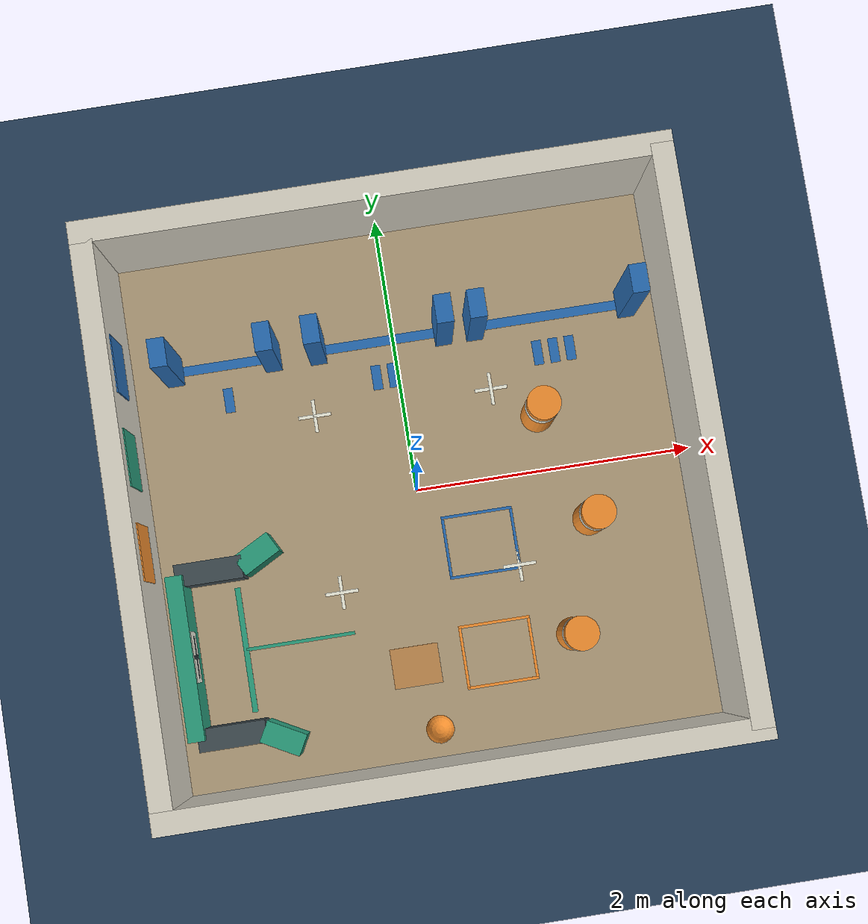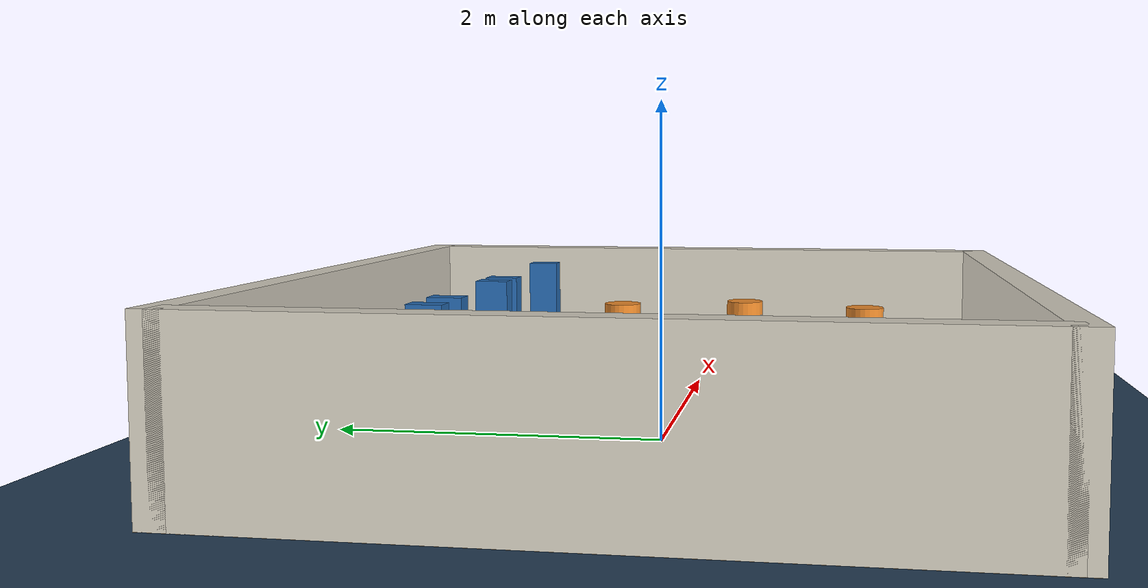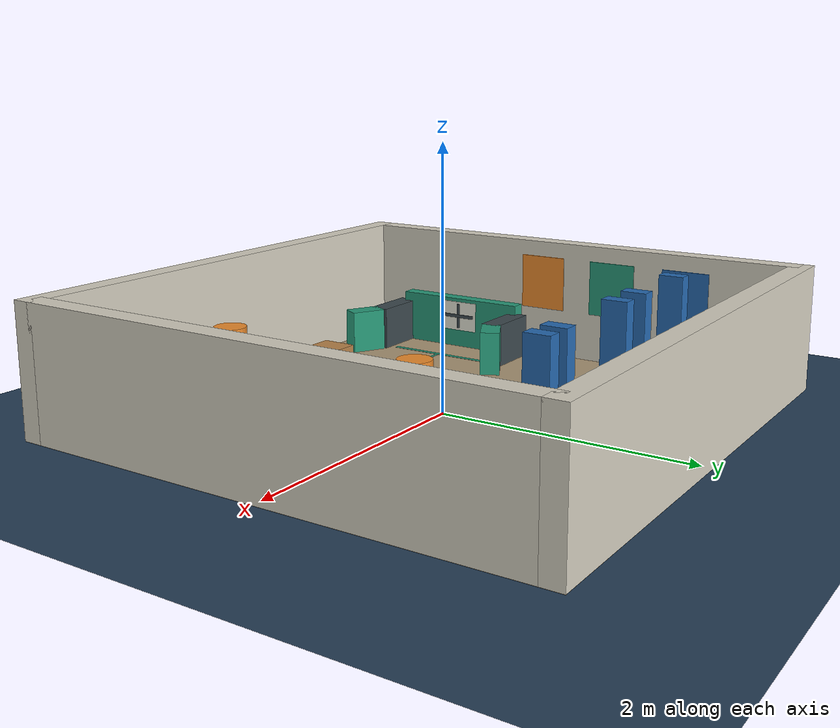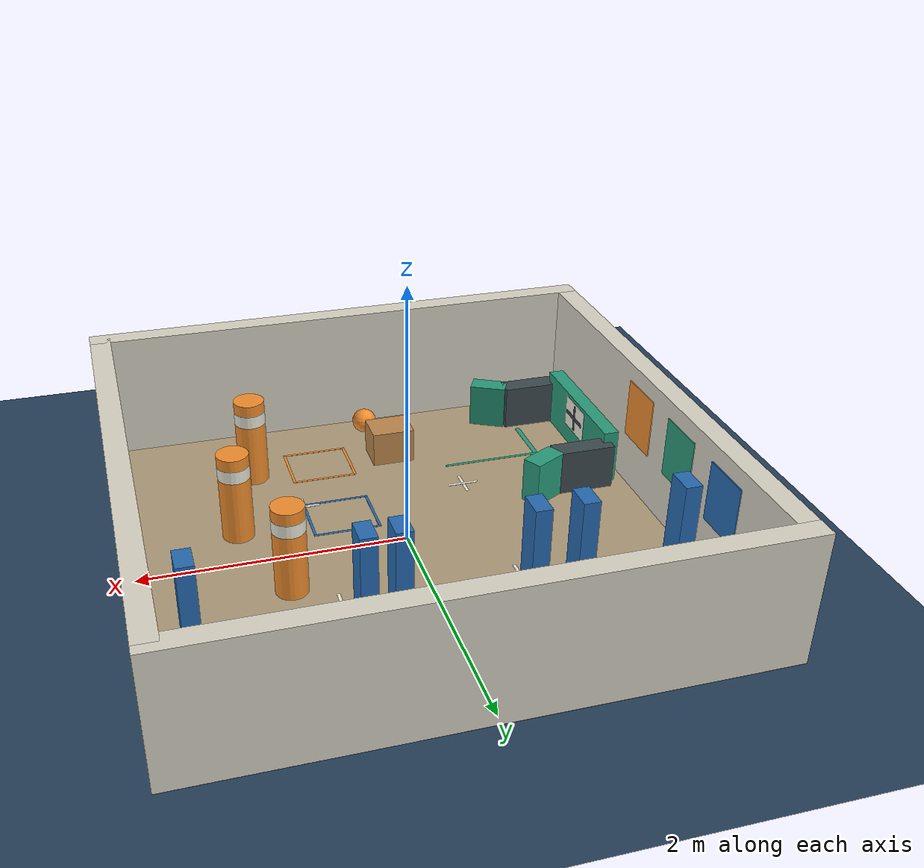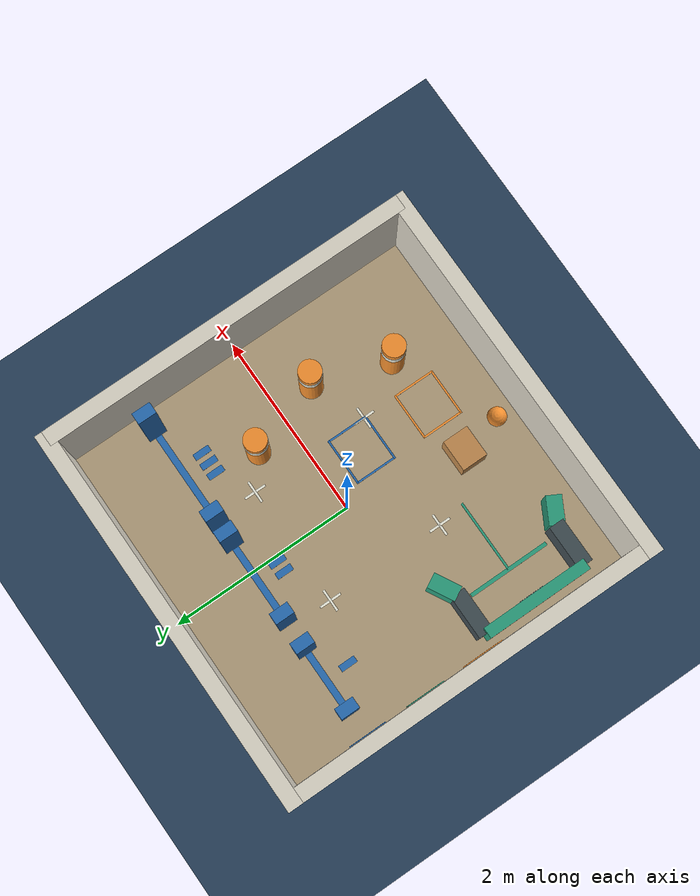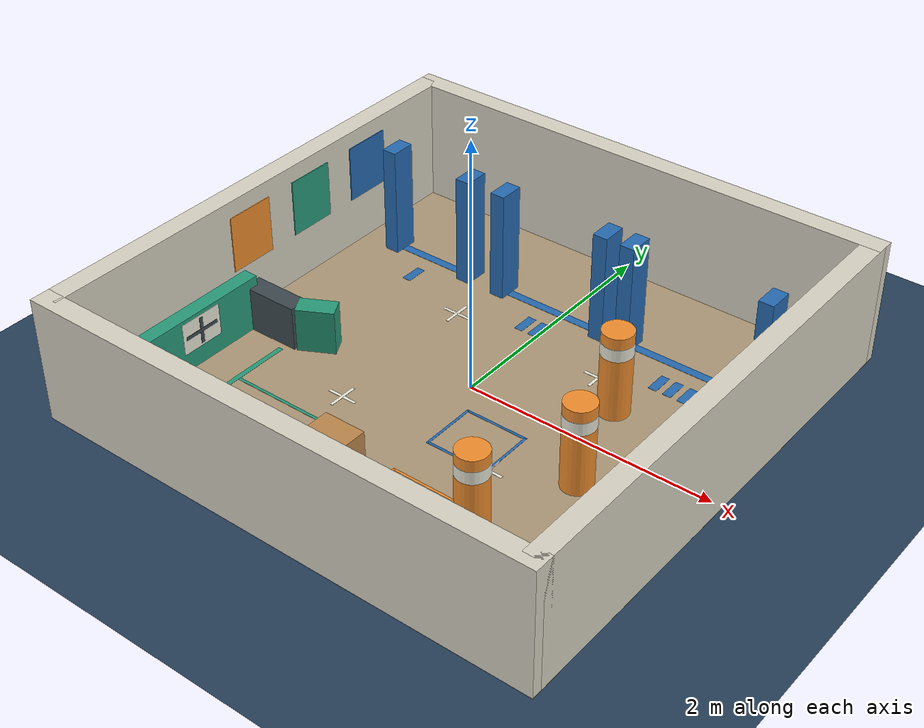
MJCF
<mujoco model="lekiwi_arena">
  <statistic center="0 0 .4" extent="3.2" />
  <visual>
    <headlight diffuse="0.6 0.6 0.6" ambient="0.3 0.3 0.3" specular="0 0 0" />
    <rgba haze="0.15 0.25 0.35 1" />
    <global azimuth="135" elevation="-48" offwidth="1280" offheight="720" />
  </visual>
  <asset>
    <texture type="skybox" builtin="gradient" rgb1="0.3 0.5 0.7" rgb2="0 0 0" width="512" height="3072" />
    <texture type="2d" name="groundplane" builtin="checker" mark="edge" rgb1="0.2 0.3 0.4" rgb2="0.1 0.2 0.3" markrgb="0.8 0.8 0.8" width="300" height="300" />
    <material name="groundplane" texture="groundplane" texuniform="true" texrepeat="5 5" reflectance="0.2" />
    <material name="arena_wall" rgba=".85 .83 .77 1" />
    <material name="arena_floor" rgba=".68 .60 .47 1" />
    <material name="arena_blue" rgba=".15 .42 .7 1" />
    <material name="arena_teal" rgba=".16 .61 .48 1" />
    <material name="arena_orange" rgba=".95 .56 .18 1" />
    <material name="arena_white" rgba=".92 .92 .86 1" />
    <material name="arena_dark" rgba=".24 .29 .31 1" />
    <material name="arena_box" rgba=".74 .53 .30 1" />
  </asset>
  <worldbody>
    <light pos="-2 -2 6" dir="0 0 -1" directional="true" />
    <geom name="floor" size="0 0 0.05" type="plane" material="groundplane" friction="0.4 0.005 0.0001" />
    <camera name="arena_top" pos="0 0 7" xyaxes="1 0 0 0 1 0" />
    <camera name="arena_overview" pos="4 -5 5.5" xyaxes=".7809 .6247 0 -.4154 .5192 .7461" />
    <!--4 x 4 m course. Standard infinite floor handles contacts; bounded finish is visual only.-->
    <geom name="arena_floor_finish" type="box" pos="0 0 0" size="2.08 2.08 0.001" material="arena_floor" contype="0" conaffinity="0" group="2" />
    <geom name="wall_north" type="box" pos="0 2 0.5" size="2.08 0.08 0.5" material="arena_wall" />
    <geom name="wall_south" type="box" pos="0 -2 0.5" size="2.08 0.08 0.5" material="arena_wall" />
    <geom name="wall_east" type="box" pos="2 0 0.5" size="0.08 2 0.5" material="arena_wall" />
    <geom name="wall_west" type="box" pos="-2 0 0.5" size="0.08 2 0.5" material="arena_wall" />
    <!--Central 1.3 x 1.3 m maneuvering area stays clear; corner marks do not affect wheel contact.-->
    <geom name="arena_center_mark_x_0" type="box" pos="-0.65 -0.65 0.002" size="0.12 0.012 0.001" material="arena_white" contype="0" conaffinity="0" group="2" />
    <geom name="arena_center_mark_y_0" type="box" pos="-0.65 -0.65 0.002" size="0.012 0.12 0.001" material="arena_white" contype="0" conaffinity="0" group="2" />
    <geom name="arena_center_mark_x_1" type="box" pos="-0.65 0.65 0.002" size="0.12 0.012 0.001" material="arena_white" contype="0" conaffinity="0" group="2" />
    <geom name="arena_center_mark_y_1" type="box" pos="-0.65 0.65 0.002" size="0.012 0.12 0.001" material="arena_white" contype="0" conaffinity="0" group="2" />
    <geom name="arena_center_mark_x_2" type="box" pos="0.65 -0.65 0.002" size="0.12 0.012 0.001" material="arena_white" contype="0" conaffinity="0" group="2" />
    <geom name="arena_center_mark_y_2" type="box" pos="0.65 -0.65 0.002" size="0.012 0.12 0.001" material="arena_white" contype="0" conaffinity="0" group="2" />
    <geom name="arena_center_mark_x_3" type="box" pos="0.65 0.65 0.002" size="0.12 0.012 0.001" material="arena_white" contype="0" conaffinity="0" group="2" />
    <geom name="arena_center_mark_y_3" type="box" pos="0.65 0.65 0.002" size="0.012 0.12 0.001" material="arena_white" contype="0" conaffinity="0" group="2" />
    <!--North: 0.6, 0.8, 1.0 m gates; 0.70 m circulation lane behind them.-->
    <geom name="arena_gate_0_left" type="box" pos="-1.61 1.12 0.45" size="0.06 0.1 0.45" material="arena_blue" />
    <geom name="arena_gate_0_right" type="box" pos="-0.89 1.12 0.45" size="0.06 0.1 0.45" material="arena_blue" />
    <geom name="arena_gate_0_threshold" type="box" pos="-1.25 1.12 0.002" size="0.3 0.035 0.001" material="arena_blue" contype="0" conaffinity="0" group="2" />
    <geom name="arena_gate_0_tick_0" type="box" pos="-1.25 0.86 0.002" size="0.035 0.09 0.001" material="arena_blue" contype="0" conaffinity="0" group="2" />
    <geom name="arena_gate_1_left" type="box" pos="-0.56 1.12 0.45" size="0.06 0.1 0.45" material="arena_blue" />
    <geom name="arena_gate_1_right" type="box" pos="0.36 1.12 0.45" size="0.06 0.1 0.45" material="arena_blue" />
    <geom name="arena_gate_1_threshold" type="box" pos="-0.1 1.12 0.002" size="0.4 0.035 0.001" material="arena_blue" contype="0" conaffinity="0" group="2" />
    <geom name="arena_gate_1_tick_0" type="box" pos="-0.16 0.86 0.002" size="0.035 0.09 0.001" material="arena_blue" contype="0" conaffinity="0" group="2" />
    <geom name="arena_gate_1_tick_1" type="box" pos="-0.04 0.86 0.002" size="0.035 0.09 0.001" material="arena_blue" contype="0" conaffinity="0" group="2" />
    <geom name="arena_gate_2_left" type="box" pos="0.59 1.12 0.45" size="0.06 0.1 0.45" material="arena_blue" />
    <geom name="arena_gate_2_right" type="box" pos="1.71 1.12 0.45" size="0.06 0.1 0.45" material="arena_blue" />
    <geom name="arena_gate_2_threshold" type="box" pos="1.15 1.12 0.002" size="0.5 0.035 0.001" material="arena_blue" contype="0" conaffinity="0" group="2" />
    <geom name="arena_gate_2_tick_0" type="box" pos="1.03 0.86 0.002" size="0.035 0.09 0.001" material="arena_blue" contype="0" conaffinity="0" group="2" />
    <geom name="arena_gate_2_tick_1" type="box" pos="1.15 0.86 0.002" size="0.035 0.09 0.001" material="arena_blue" contype="0" conaffinity="0" group="2" />
    <geom name="arena_gate_2_tick_2" type="box" pos="1.27 0.86 0.002" size="0.035 0.09 0.001" material="arena_blue" contype="0" conaffinity="0" group="2" />
    <!--East: staggered slalom; at least 0.60 m between bollards and east wall.-->
    <geom name="arena_slalom_0" type="cylinder" pos="0.95 -1.2 0.35" size="0.12 0.35" material="arena_orange" />
    <geom name="arena_slalom_band_0" type="cylinder" pos="0.95 -1.2 0.56" size="0.121 0.05" material="arena_white" contype="0" conaffinity="0" group="2" />
    <geom name="arena_slalom_1" type="cylinder" pos="1.2 -0.4 0.35" size="0.12 0.35" material="arena_orange" />
    <geom name="arena_slalom_band_1" type="cylinder" pos="1.2 -0.4 0.56" size="0.121 0.05" material="arena_white" contype="0" conaffinity="0" group="2" />
    <geom name="arena_slalom_2" type="cylinder" pos="0.95 0.4 0.35" size="0.12 0.35" material="arena_orange" />
    <geom name="arena_slalom_band_2" type="cylinder" pos="0.95 0.4 0.56" size="0.121 0.05" material="arena_white" contype="0" conaffinity="0" group="2" />
    <!--Southwest: docking pocket with 1 m inner width, approached from the east.-->
    <geom name="arena_dock_back" type="box" pos="-1.78 -0.95 0.22" size="0.06 0.58 0.22" material="arena_teal" />
    <geom name="arena_dock_side_0" type="box" pos="-1.54 -1.53 .18" size=".24 .08 .18" material="arena_dark" />
    <geom name="arena_dock_side_1" type="box" pos="-1.54 -0.37 .18" size=".24 .08 .18" material="arena_dark" />
    <geom name="arena_dock_stop" type="box" pos="-1.39 -.95 .002" size="0.02 0.45 0.001" material="arena_teal" contype="0" conaffinity="0" group="2" />
    <!--South: lightweight pushable objects in an open practice area.-->
    <body name="arena_push_box" pos="-.2 -1.25 .145">
      <freejoint name="arena_push_box_free" />
      <geom name="arena_push_box_geom" type="box" size=".17 .14 .14" mass=".18" material="arena_box" friction=".22 .002 .0001" condim="4" />
    </body>
    <body name="arena_push_ball" pos="-.1 -1.72 .105">
      <freejoint name="arena_push_ball_free" />
      <geom name="arena_push_ball_geom" type="sphere" size=".10" mass=".06" material="arena_orange" friction=".22 .002 .0001" condim="4" />
    </body>
    <!--West wall landmarks distinguish orientation without obstructing the open center.-->
    <geom name="arena_landmark_0" type="box" pos="-1.912 -0.2 0.64" size="0.004 0.2 0.23" material="arena_orange" contype="0" conaffinity="0" group="2" />
    <geom name="arena_landmark_1" type="box" pos="-1.912 0.45 0.64" size="0.004 0.2 0.23" material="arena_teal" contype="0" conaffinity="0" group="2" />
    <geom name="arena_landmark_2" type="box" pos="-1.912 1.1 0.64" size="0.004 0.2 0.23" material="arena_blue" contype="0" conaffinity="0" group="2" />
    <!--Visual-only pushing target: 0.50 x 0.44 m, center (0.4,-1.25). Push east from box spawn.-->
    <geom name="arena_push_target_north" type="box" pos=".4 -1.03 .002" size=".26 .01 .001" material="arena_orange" contype="0" conaffinity="0" group="2" />
    <geom name="arena_push_target_south" type="box" pos=".4 -1.47 .002" size=".26 .01 .001" material="arena_orange" contype="0" conaffinity="0" group="2" />
    <geom name="arena_push_target_west" type="box" pos=".15 -1.25 .002" size=".01 .22 .001" material="arena_orange" contype="0" conaffinity="0" group="2" />
    <geom name="arena_push_target_east" type="box" pos=".65 -1.25 .002" size=".01 .22 .001" material="arena_orange" contype="0" conaffinity="0" group="2" />
    <!--Dock stop line marks robot center, 0.33 m from the back face. Centerline extends into approach.-->
    <geom name="arena_dock_centerline" type="box" pos="-.995 -.95 .002" size=".395 .012 .001" material="arena_teal" contype="0" conaffinity="0" group="2" />
    <geom name="arena_dock_back_target" type="box" pos="-1.718 -.95 .28" size=".001 .18 .13" material="arena_white" contype="0" conaffinity="0" group="2" />
    <geom name="arena_dock_back_target_vertical" type="box" pos="-1.715 -.95 .28" size=".001 .015 .11" material="arena_dark" contype="0" conaffinity="0" group="2" />
    <geom name="arena_dock_back_target_horizontal" type="box" pos="-1.714 -.95 .28" size=".001 .15 .015" material="arena_dark" contype="0" conaffinity="0" group="2" />
    <!--Flared dock mouth: angled contact guides taper into the original 1 m-wide pocket.-->
    <geom name="arena_dock_flare_0" type="box" pos="-1.19 -1.6 .18" size="0.14764823 .08 .18" euler="0 0 -28.30075577" material="arena_teal" />
    <geom name="arena_dock_flare_1" type="box" pos="-1.19 -0.3 .18" size="0.14764823 .08 .18" euler="0 0 28.30075577" material="arena_teal" />
    <!--Second target at (0.4,-0.45): push east to the orange target, reposition south, then push north to blue.-->
    <geom name="arena_push_target_2_north" type="box" pos=".4 -.23 .002" size=".26 .01 .001" material="arena_blue" contype="0" conaffinity="0" group="2" />
    <geom name="arena_push_target_2_south" type="box" pos=".4 -.67 .002" size=".26 .01 .001" material="arena_blue" contype="0" conaffinity="0" group="2" />
    <geom name="arena_push_target_2_west" type="box" pos=".15 -.45 .002" size=".01 .22 .001" material="arena_blue" contype="0" conaffinity="0" group="2" />
    <geom name="arena_push_target_2_east" type="box" pos=".65 -.45 .002" size=".01 .22 .001" material="arena_blue" contype="0" conaffinity="0" group="2" />
  </worldbody>
</mujoco>
